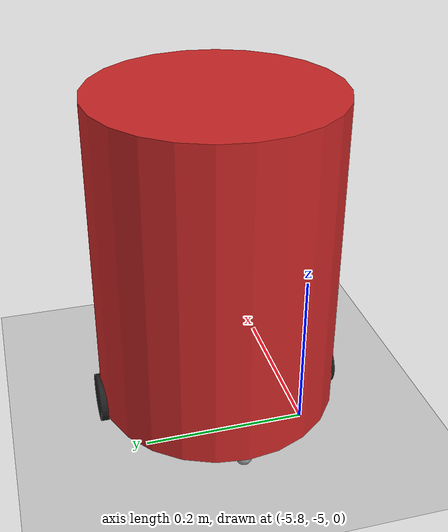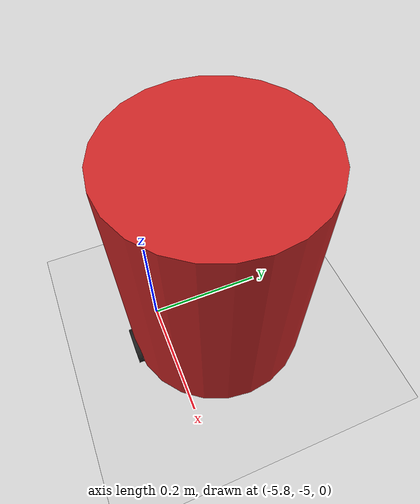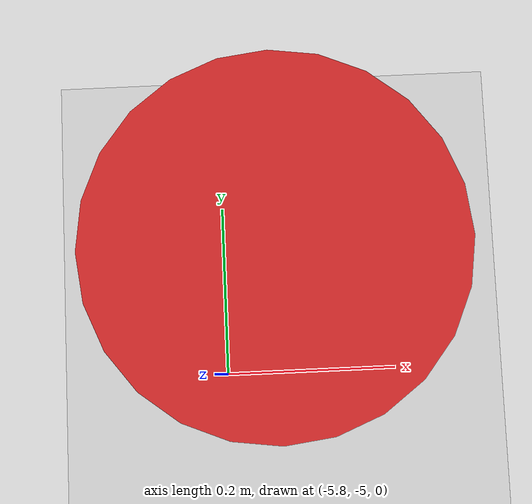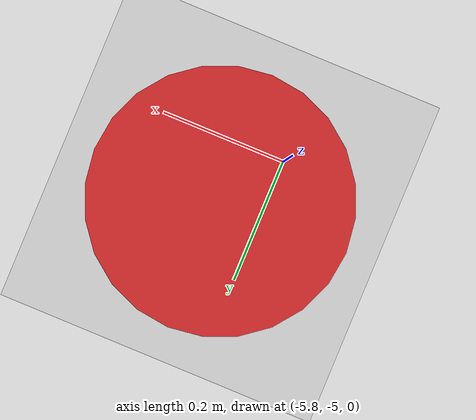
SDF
<sdf version="1.6">
 <world name="default">
  <model name="ground_plane">
   <static>1</static>
   <link name="ground_link">
    <collision name="collision">
     <geometry><plane><normal>0 0 1</normal><size>100 100</size></plane></geometry>
     <surface><friction><ode><mu>100</mu><mu2>50</mu2></ode></friction></surface>
    </collision>
    <visual name="visual">
     <cast_shadows>0</cast_shadows>
     <geometry><plane><normal>0 0 1</normal><size>100 100</size></plane></geometry>
     <material>
      <script><uri>file://media/materials/scripts/gazebo.material</uri><name>Gazebo/Grey</name></script>
     </material>
    </visual>
   </link>
  </model>
  <model name="CleanerBot_5">
   <link name="link_0">
    <inertial>
     <mass>1</mass>
     <inertia><ixx>0.145833</ixx><ixy>0</ixy><ixz>0</ixz><iyy>0.145833</iyy><iyz>0</iyz><izz>0.125</izz></inertia>
    </inertial>
    <pose>0 0 0.2001 0 -0 0</pose>
    <visual name="visual">
     <geometry><cylinder><radius>0.15</radius><length>0.4</length></cylinder></geometry>
     <material>
      <lighting>1</lighting>
      <script><uri>file://media/materials/scripts/gazebo.material</uri><name>Gazebo/Red</name></script>
      <shader type="pixel"><normal_map>__default__</normal_map></shader>
      <ambient>0.8 0 0 1</ambient>
      <diffuse>0.7 0.7 0.7 1</diffuse>
      <specular>0.01 0.01 0.01 1</specular>
      <emissive>0 0 0 1</emissive>
     </material>
    </visual>
    <collision name="collision">
     <geometry><cylinder><radius>0.15</radius><length>0.4</length></cylinder></geometry>
     <surface>
      <friction>
       <ode><mu>1</mu><mu2>1</mu2><fdir1>0 0 0</fdir1><slip1>0</slip1><slip2>0</slip2></ode>
       <torsional>
        <coefficient>1</coefficient>
        <patch_radius>0</patch_radius>
        <surface_radius>0</surface_radius>
        <use_patch_radius>1</use_patch_radius>
        <ode><slip>0</slip></ode>
       </torsional>
      </friction>
      <bounce><restitution_coefficient>0</restitution_coefficient><threshold>1e+06</threshold></bounce>
      <contact>
       <collide_without_contact>0</collide_without_contact>
       <collide_without_contact_bitmask>1</collide_without_contact_bitmask>
       <collide_bitmask>1</collide_bitmask>
       <ode>
        <soft_cfm>0</soft_cfm>
        <soft_erp>0.2</soft_erp>
        <kp>1e+13</kp>
        <kd>1</kd>
        <max_vel>0.01</max_vel>
        <min_depth>0</min_depth>
       </ode>
       <bullet>
        <split_impulse>1</split_impulse>
        <split_impulse_penetration_threshold>-0.01</split_impulse_penetration_threshold>
        <soft_cfm>0</soft_cfm>
        <soft_erp>0.2</soft_erp>
        <kp>1e+13</kp>
        <kd>1</kd>
       </bullet>
      </contact>
     </surface>
    </collision>
   </link>
   <link name="link_1">
    <inertial>
     <mass>1</mass>
     <inertia><ixx>0.145833</ixx><ixy>0</ixy><ixz>0</ixz><iyy>0.145833</iyy><iyz>0</iyz><izz>0.125</izz></inertia>
    </inertial>
    <pose>0 0.15 0.007 1.5707 -0 0</pose>
    <visual name="visual">
     <geometry><cylinder><radius>0.03</radius><length>0.01</length></cylinder></geometry>
     <material>
      <lighting>1</lighting>
      <script><uri>file://media/materials/scripts/gazebo.material</uri><name>Gazebo/Black</name></script>
      <shader type="pixel"><normal_map>__default__</normal_map></shader>
      <ambient>0 0 0.8 1</ambient>
      <diffuse>0.7 0.7 0.7 1</diffuse>
      <specular>0.01 0.01 0.01 1</specular>
      <emissive>0 0 0 1</emissive>
     </material>
    </visual>
    <collision name="collision">
     <geometry><cylinder><radius>0.03</radius><length>0.01</length></cylinder></geometry>
     <surface>
      <friction>
       <ode><mu>1</mu><mu2>1</mu2><fdir1>0 0 0</fdir1><slip1>0</slip1><slip2>0</slip2></ode>
       <torsional>
        <coefficient>1</coefficient>
        <patch_radius>0</patch_radius>
        <surface_radius>0</surface_radius>
        <use_patch_radius>1</use_patch_radius>
        <ode><slip>0</slip></ode>
       </torsional>
      </friction>
      <bounce><restitution_coefficient>0</restitution_coefficient><threshold>1e+06</threshold></bounce>
      <contact>
       <collide_without_contact>0</collide_without_contact>
       <collide_without_contact_bitmask>1</collide_without_contact_bitmask>
       <collide_bitmask>1</collide_bitmask>
       <ode>
        <soft_cfm>0</soft_cfm>
        <soft_erp>0.2</soft_erp>
        <kp>1e+13</kp>
        <kd>1</kd>
        <max_vel>0.01</max_vel>
        <min_depth>0</min_depth>
       </ode>
       <bullet>
        <split_impulse>1</split_impulse>
        <split_impulse_penetration_threshold>-0.01</split_impulse_penetration_threshold>
        <soft_cfm>0</soft_cfm>
        <soft_erp>0.2</soft_erp>
        <kp>1e+13</kp>
        <kd>1</kd>
       </bullet>
      </contact>
     </surface>
    </collision>
   </link>
   <link name="link_1_clone">
    <inertial>
     <mass>1</mass>
     <inertia><ixx>0.145833</ixx><ixy>0</ixy><ixz>0</ixz><iyy>0.145833</iyy><iyz>0</iyz><izz>0.125</izz></inertia>
    </inertial>
    <pose>0 -0.15 0.007 1.5707 -0 0</pose>
    <visual name="visual">
     <geometry><cylinder><radius>0.03</radius><length>0.01</length></cylinder></geometry>
     <material>
      <lighting>1</lighting>
      <script><uri>file://media/materials/scripts/gazebo.material</uri><name>Gazebo/Black</name></script>
      <shader type="pixel"><normal_map>__default__</normal_map></shader>
      <ambient>0 0 0.8 1</ambient>
      <diffuse>0.7 0.7 0.7 1</diffuse>
      <specular>0.01 0.01 0.01 1</specular>
      <emissive>0 0 0 1</emissive>
     </material>
    </visual>
    <collision name="collision">
     <geometry><cylinder><radius>0.03</radius><length>0.01</length></cylinder></geometry>
     <surface>
      <friction>
       <ode><mu>1</mu><mu2>1</mu2><fdir1>0 0 0</fdir1><slip1>0</slip1><slip2>0</slip2></ode>
       <torsional>
        <coefficient>1</coefficient>
        <patch_radius>0</patch_radius>
        <surface_radius>0</surface_radius>
        <use_patch_radius>1</use_patch_radius>
        <ode><slip>0</slip></ode>
       </torsional>
      </friction>
      <bounce><restitution_coefficient>0</restitution_coefficient><threshold>1e+06</threshold></bounce>
      <contact>
       <collide_without_contact>0</collide_without_contact>
       <collide_without_contact_bitmask>1</collide_without_contact_bitmask>
       <collide_bitmask>1</collide_bitmask>
       <ode>
        <soft_cfm>0</soft_cfm>
        <soft_erp>0.2</soft_erp>
        <kp>1e+13</kp>
        <kd>1</kd>
        <max_vel>0.01</max_vel>
        <min_depth>0</min_depth>
       </ode>
       <bullet>
        <split_impulse>1</split_impulse>
        <split_impulse_penetration_threshold>-0.01</split_impulse_penetration_threshold>
        <soft_cfm>0</soft_cfm>
        <soft_erp>0.2</soft_erp>
        <kp>1e+13</kp>
        <kd>1</kd>
       </bullet>
      </contact>
     </surface>
    </collision>
   </link>
   <link name="link_2">
    <inertial>
     <mass>1</mass>
     <inertia><ixx>0.1</ixx><ixy>0</ixy><ixz>0</ixz><iyy>0.1</iyy><iyz>0</iyz><izz>0.1</izz></inertia>
    </inertial>
    <pose>0.13 0 -0.013 0 -0 0</pose>
    <visual name="visual">
     <geometry><sphere><radius>0.01</radius></sphere></geometry>
     <material>
      <lighting>1</lighting>
      <script><uri>file://media/materials/scripts/gazebo.material</uri><name>Gazebo/Grey</name></script>
      <shader type="pixel"><normal_map>__default__</normal_map></shader>
      <ambient>0.3 0.3 0.3 1</ambient>
      <diffuse>0.7 0.7 0.7 1</diffuse>
      <specular>0.01 0.01 0.01 1</specular>
      <emissive>0 0 0 1</emissive>
     </material>
    </visual>
    <collision name="collision">
     <geometry><sphere><radius>0.01</radius></sphere></geometry>
     <surface>
      <friction>
       <ode><mu>0</mu><mu2>0</mu2><fdir1>0 0 0</fdir1><slip1>0</slip1><slip2>0</slip2></ode>
       <torsional>
        <coefficient>1</coefficient>
        <patch_radius>0</patch_radius>
        <surface_radius>0</surface_radius>
        <use_patch_radius>1</use_patch_radius>
        <ode><slip>0</slip></ode>
       </torsional>
      </friction>
      <bounce><restitution_coefficient>0</restitution_coefficient><threshold>1e+06</threshold></bounce>
      <contact>
       <collide_without_contact>0</collide_without_contact>
       <collide_without_contact_bitmask>1</collide_without_contact_bitmask>
       <collide_bitmask>1</collide_bitmask>
       <ode>
        <soft_cfm>0</soft_cfm>
        <soft_erp>0.2</soft_erp>
        <kp>1e+13</kp>
        <kd>1</kd>
        <max_vel>0.01</max_vel>
        <min_depth>0</min_depth>
       </ode>
       <bullet>
        <split_impulse>1</split_impulse>
        <split_impulse_penetration_threshold>-0.01</split_impulse_penetration_threshold>
        <soft_cfm>0</soft_cfm>
        <soft_erp>0.2</soft_erp>
        <kp>1e+13</kp>
        <kd>1</kd>
       </bullet>
      </contact>
     </surface>
    </collision>
   </link>
   <link name="link_2_clone">
    <inertial>
     <mass>1</mass>
     <inertia><ixx>0.1</ixx><ixy>0</ixy><ixz>0</ixz><iyy>0.1</iyy><iyz>0</iyz><izz>0.1</izz></inertia>
    </inertial>
    <pose>-0.13 0 -0.013 0 -0 0</pose>
    <visual name="visual">
     <geometry><sphere><radius>0.01</radius></sphere></geometry>
     <material>
      <lighting>1</lighting>
      <script><uri>file://media/materials/scripts/gazebo.material</uri><name>Gazebo/Grey</name></script>
      <shader type="pixel"><normal_map>__default__</normal_map></shader>
      <ambient>0.3 0.3 0.3 1</ambient>
      <diffuse>0.7 0.7 0.7 1</diffuse>
      <specular>0.01 0.01 0.01 1</specular>
      <emissive>0 0 0 1</emissive>
     </material>
    </visual>
    <collision name="collision">
     <geometry><sphere><radius>0.01</radius></sphere></geometry>
     <surface>
      <friction>
       <ode><mu>0</mu><mu2>0</mu2><fdir1>0 0 0</fdir1><slip1>0</slip1><slip2>0</slip2></ode>
       <torsional>
        <coefficient>1</coefficient>
        <patch_radius>0</patch_radius>
        <surface_radius>0</surface_radius>
        <use_patch_radius>1</use_patch_radius>
        <ode><slip>0</slip></ode>
       </torsional>
      </friction>
      <bounce><restitution_coefficient>0</restitution_coefficient><threshold>1e+06</threshold></bounce>
      <contact>
       <collide_without_contact>0</collide_without_contact>
       <collide_without_contact_bitmask>1</collide_without_contact_bitmask>
       <collide_bitmask>1</collide_bitmask>
       <ode>
        <soft_cfm>0</soft_cfm>
        <soft_erp>0.2</soft_erp>
        <kp>1e+13</kp>
        <kd>1</kd>
        <max_vel>0.01</max_vel>
        <min_depth>0</min_depth>
       </ode>
       <bullet>
        <split_impulse>1</split_impulse>
        <split_impulse_penetration_threshold>-0.01</split_impulse_penetration_threshold>
        <soft_cfm>0</soft_cfm>
        <soft_erp>0.2</soft_erp>
        <kp>1e+13</kp>
        <kd>1</kd>
       </bullet>
      </contact>
     </surface>
    </collision>
   </link>
   <joint name="link_0_JOINT_1" type="revolute">
    <parent>link_0</parent>
    <child>link_1_clone</child>
    <axis>
     <xyz>0 0 1</xyz>
     <limit>
      <lower>-1.79769e+308</lower>
      <upper>1.79769e+308</upper>
      <effort>-1</effort>
      <velocity>-1</velocity>
     </limit>
     <dynamics>
      <spring_reference>0</spring_reference>
      <spring_stiffness>0</spring_stiffness>
      <damping>0</damping>
     </dynamics>
     <use_parent_model_frame>0</use_parent_model_frame>
    </axis>
    <physics>
     <ode><limit><cfm>0</cfm><erp>0.2</erp></limit><suspension><cfm>0</cfm><erp>0.2</erp></suspension></ode>
    </physics>
   </joint>
   <joint name="link_0_JOINT_2" type="revolute">
    <parent>link_0</parent>
    <child>link_1</child>
    <axis>
     <xyz>0 0 1</xyz>
     <limit>
      <lower>-1.79769e+308</lower>
      <upper>1.79769e+308</upper>
      <effort>-1</effort>
      <velocity>-1</velocity>
     </limit>
     <dynamics>
      <spring_reference>0</spring_reference>
      <spring_stiffness>0</spring_stiffness>
      <damping>0</damping>
     </dynamics>
     <use_parent_model_frame>0</use_parent_model_frame>
    </axis>
    <physics>
     <ode><limit><cfm>0</cfm><erp>0.2</erp></limit><suspension><cfm>0</cfm><erp>0.2</erp></suspension></ode>
    </physics>
   </joint>
   <joint name="link_0_JOINT_4" type="fixed">
    <parent>link_0</parent>
    <child>link_2</child>
    <physics>
     <ode><limit><cfm>0</cfm><erp>0.2</erp></limit><suspension><cfm>0</cfm><erp>0.2</erp></suspension></ode>
    </physics>
   </joint>
   <joint name="link_0_JOINT_5" type="fixed">
    <parent>link_0</parent>
    <child>link_2_clone</child>
    <physics>
     <ode><limit><cfm>0</cfm><erp>0.2</erp></limit><suspension><cfm>0</cfm><erp>0.2</erp></suspension></ode>
    </physics>
   </joint>
   <static>0</static>
   <pose>-5.7333 -4.90568 0.023001 -3e-06 2e-06 1.3e-05</pose>
  </model>
 </world>
</sdf>
